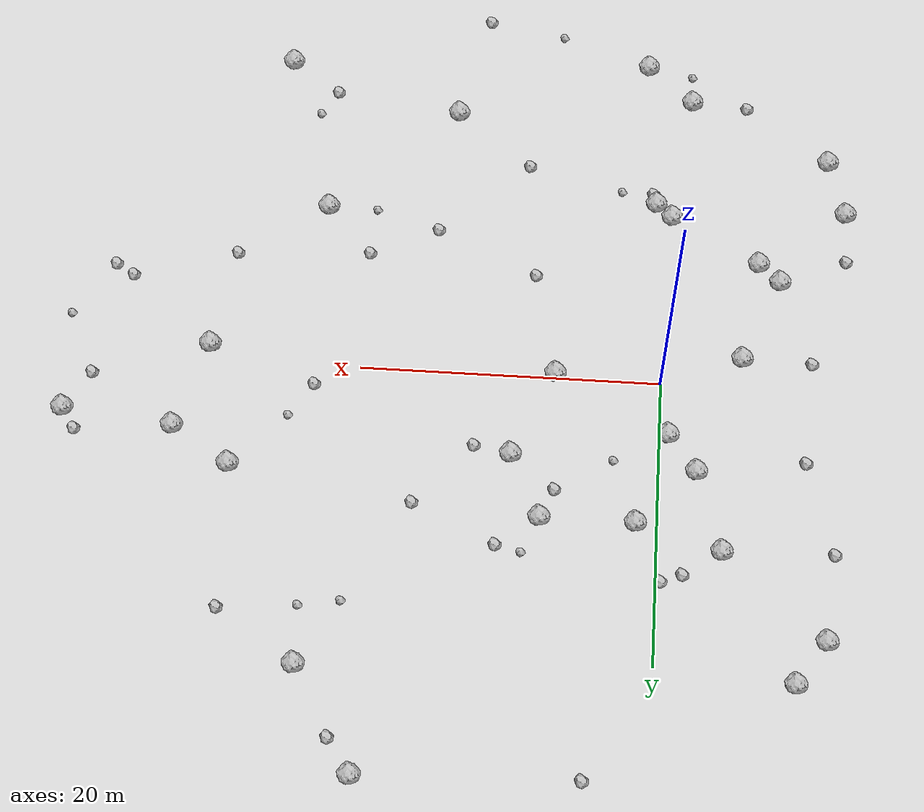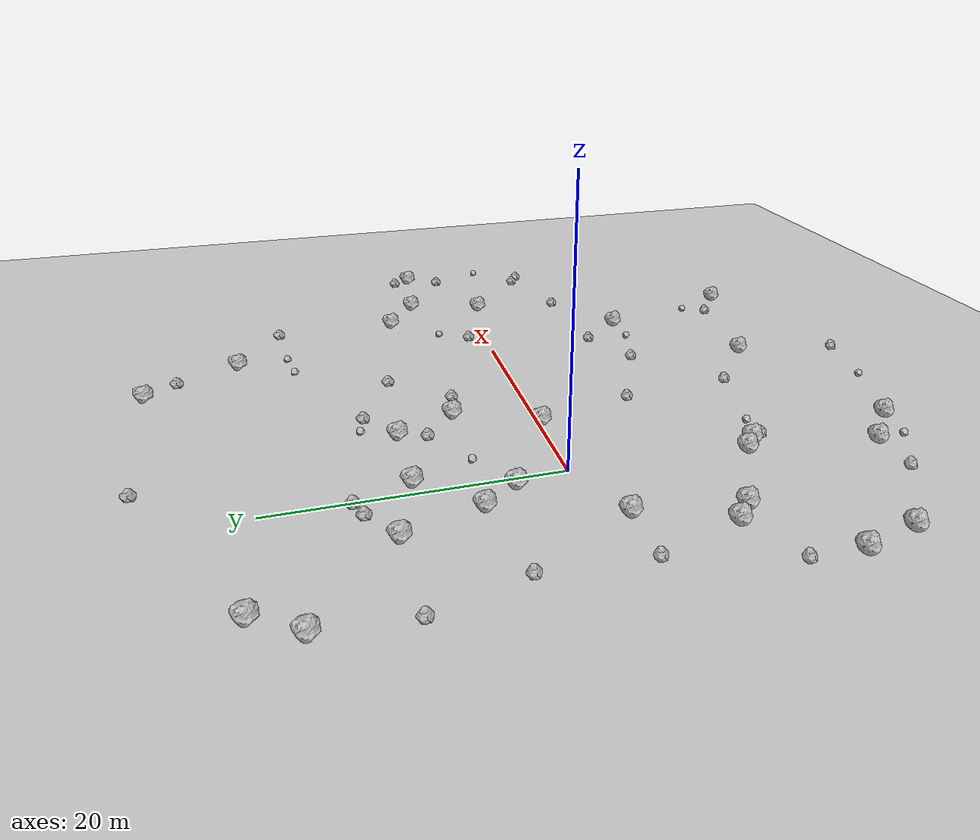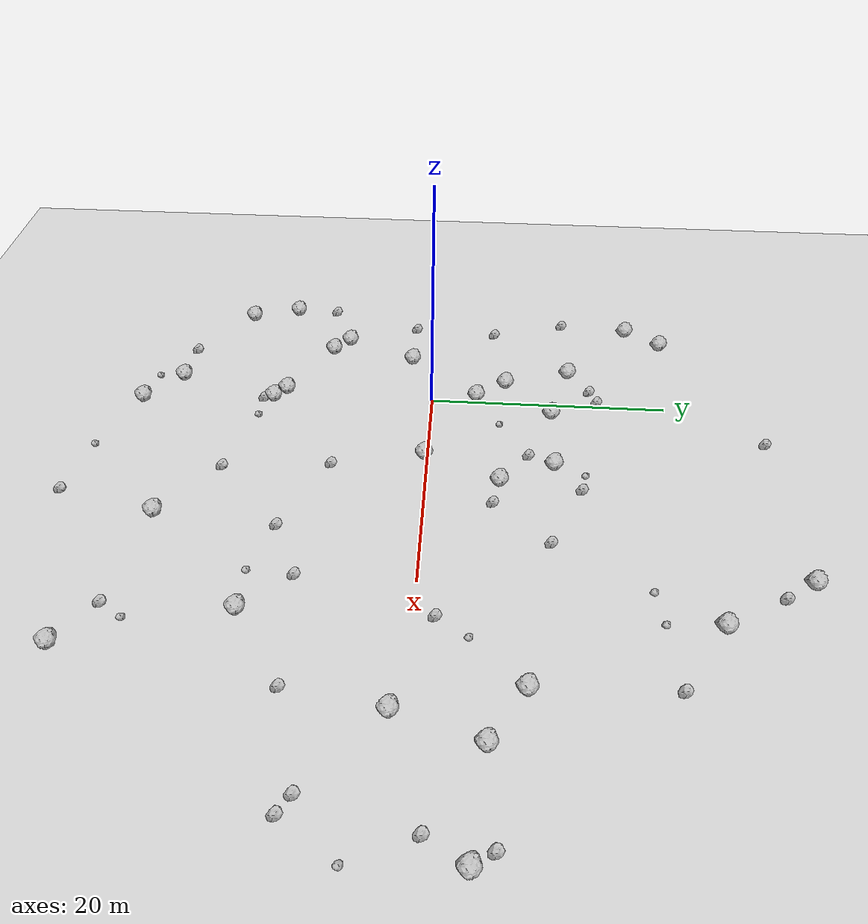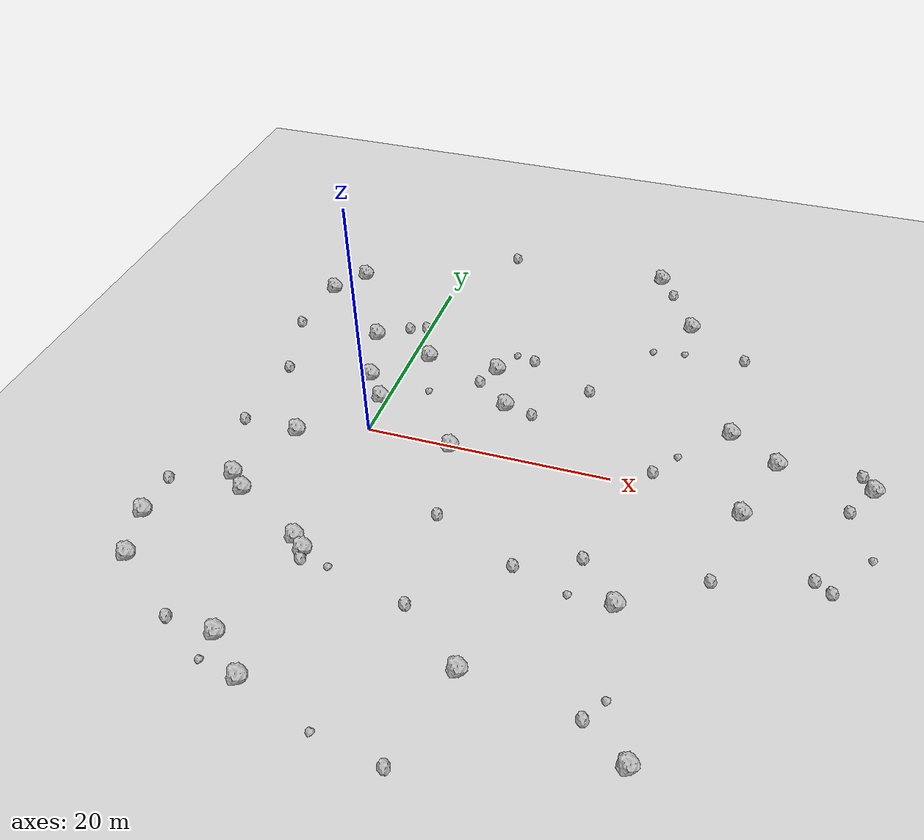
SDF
<sdf version="1.6">
 <world name="default">
  <include><uri>model://custom_ground</uri></include>
  <include><uri>model://sun</uri></include>
  <model name="rock1_0_0">
   <include><uri>model://rock1</uri><pose>-6.443277503195418 -9.487868707565788 0.5 0 0 0</pose></include>
  </model>
  <model name="rock1_0_1">
   <include><uri>model://rock1</uri><pose>22.550187904807615 21.19036130373661 0.5 0 0 0</pose></include>
  </model>
  <model name="rock1_0_2">
   <include><uri>model://rock1</uri><pose>7.0305556059217835 -0.28750387324463844 0.5 0 0 0</pose></include>
  </model>
  <model name="rock1_0_3">
   <include><uri>model://rock1</uri><pose>7.641760754076454 10.216692038546014 0.5 0 0 0</pose></include>
  </model>
  <model name="rock1_0_4">
   <include><uri>model://rock1</uri><pose>30.23309122094161 -1.0826560397617229 0.5 0 0 0</pose></include>
  </model>
  <model name="rock1_0_5">
   <include><uri>model://rock1</uri><pose>-1.7187637144472774 -22.406144028406178 0.5 0 0 0</pose></include>
  </model>
  <model name="rock1_0_6">
   <include><uri>model://rock1</uri><pose>1.4079951477513895 10.235617145945696 0.5 0 0 0</pose></include>
  </model>
  <model name="rock1_0_7">
   <include><uri>model://rock1</uri><pose>-8.902995518602284 20.622236321182733 0.5 0 0 0</pose></include>
  </model>
  <model name="rock1_0_8">
   <include><uri>model://rock1</uri><pose>39.508549570712496 4.245681624743078 0.5 0 0 0</pose></include>
  </model>
  <model name="rock1_0_9">
   <include><uri>model://rock1</uri><pose>-5.3894212409241256 -2.116709362998673 0.5 0 0 0</pose></include>
  </model>
  <model name="rock1_0_10">
   <include><uri>model://rock1</uri><pose>0.6335205582660848 -13.85178328141134 0.5 0 0 0</pose></include>
  </model>
  <model name="rock1_0_11">
   <include><uri>model://rock1</uri><pose>-7.8994113767563405 -8.149558475429263 0.5 0 0 0</pose></include>
  </model>
  <model name="rock1_0_12">
   <include><uri>model://rock1</uri><pose>-4.181651870606091 11.913827634127998 0.5 0 0 0</pose></include>
  </model>
  <model name="rock1_0_13">
   <include><uri>model://rock1</uri><pose>-11.219704810035068 -17.939012809515518 0.5 0 0 0</pose></include>
  </model>
  <model name="rock1_0_14">
   <include><uri>model://rock1</uri><pose>-12.384349242800045 -13.789519842083834 0.5 0 0 0</pose></include>
  </model>
  <model name="rock1_0_15">
   <include><uri>model://rock1</uri><pose>23.21728155504649 -12.295263806051281 0.5 0 0 0</pose></include>
  </model>
  <model name="rock1_0_16">
   <include><uri>model://rock1</uri><pose>1.4245927293472356 -25.220313886482394 0.5 0 0 0</pose></include>
  </model>
  <model name="rock1_0_17">
   <include><uri>model://rock1</uri><pose>28.144983278134205 7.646546889041026 0.5 0 0 0</pose></include>
  </model>
  <model name="rock1_0_18">
   <include><uri>model://rock1</uri><pose>32.11437152186351 5.10086176141121 0.5 0 0 0</pose></include>
  </model>
  <model name="rock1_0_19">
   <include><uri>model://rock1</uri><pose>14.702481053617383 -20.540502805543724 0.5 0 0 0</pose></include>
  </model>
  <model name="rock1_0_20">
   <include><uri>model://rock1</uri><pose>18.458557971878285 28.14566371858286 0.5 0 0 0</pose></include>
  </model>
  <model name="rock1_0_21">
   <include><uri>model://rock1</uri><pose>26.76821164574025 -24.200863007803893 0.5 0 0 0</pose></include>
  </model>
  <model name="rock1_0_22">
   <include><uri>model://rock1</uri><pose>-10.872672660922223 17.65755850956768 0.5 0 0 0</pose></include>
  </model>
  <model name="rock1_0_23">
   <include><uri>model://rock1</uri><pose>9.725443613026663 5.827948389595555 0.5 0 0 0</pose></include>
  </model>
  <model name="rock1_0_24">
   <include><uri>model://rock1</uri><pose>-0.5668998233712621 3.793885789892016 0.5 0 0 0</pose></include>
  </model>
  <model name="rock1_0_25">
   <include><uri>model://rock1</uri><pose>-0.47103784757431555 -12.868228384196051 0.5 0 0 0</pose></include>
  </model>
  <model name="rock1_0_26">
   <include><uri>model://rock1</uri><pose>-2.460116495946018 6.343293231969525 0.5 0 0 0</pose></include>
  </model>
  <model name="rock2_0_0">
   <include><uri>model://rock2</uri><pose>12.850765968298496 -28.47531916898552 0.3 0 0 0</pose></include>
  </model>
  <model name="rock2_0_1">
   <include><uri>model://rock2</uri><pose>36.019471530731906 -6.098207384405498 0.3 0 0 0</pose></include>
  </model>
  <model name="rock2_0_2">
   <include><uri>model://rock2</uri><pose>27.797516410862315 17.69431097387575 0.3 0 0 0</pose></include>
  </model>
  <model name="rock2_0_3">
   <include><uri>model://rock2</uri><pose>29.090618905798145 -8.232707097950318 0.3 0 0 0</pose></include>
  </model>
  <model name="rock2_0_4">
   <include><uri>model://rock2</uri><pose>38.546825873859945 5.725180578138122 0.3 0 0 0</pose></include>
  </model>
  <model name="rock2_0_5">
   <include><uri>model://rock2</uri><pose>-5.555884834743875 -22.12730717349487 0.3 0 0 0</pose></include>
  </model>
  <model name="rock2_0_6">
   <include><uri>model://rock2</uri><pose>20.07562160194979 -8.753678265193251 0.3 0 0 0</pose></include>
  </model>
  <model name="rock2_0_7">
   <include><uri>model://rock2</uri><pose>-0.2885765354832657 14.222355390068074 0.3 0 0 0</pose></include>
  </model>
  <model name="rock2_0_8">
   <include><uri>model://rock2</uri><pose>23.013899254310246 1.4826230786989605 0.3 0 0 0</pose></include>
  </model>
  <model name="rock2_0_9">
   <include><uri>model://rock2</uri><pose>8.660892484651097 -7.688255160640075 0.3 0 0 0</pose></include>
  </model>
  <model name="rock2_0_10">
   <include><uri>model://rock2</uri><pose>20.010362096543105 25.84250545110538 0.3 0 0 0</pose></include>
  </model>
  <model name="rock2_0_11">
   <include><uri>model://rock2</uri><pose>6.742515614180572 8.206277493050955 0.3 0 0 0</pose></include>
  </model>
  <model name="rock2_0_12">
   <include><uri>model://rock2</uri><pose>-12.402292016353588 -10.015560882795626 0.3 0 0 0</pose></include>
  </model>
  <model name="rock2_0_13">
   <include><uri>model://rock2</uri><pose>15.499037753693862 -10.883290655876127 0.3 0 0 0</pose></include>
  </model>
  <model name="rock2_0_14">
   <include><uri>model://rock2</uri><pose>0.8484165443850387 -14.65119680552032 0.3 0 0 0</pose></include>
  </model>
  <model name="rock2_0_15">
   <include><uri>model://rock2</uri><pose>9.478109685024307 -16.402811645770917 0.3 0 0 0</pose></include>
  </model>
  <model name="rock2_0_16">
   <include><uri>model://rock2</uri><pose>15.945537602363324 9.680524663623594 0.3 0 0 0</pose></include>
  </model>
  <model name="rock2_0_17">
   <include><uri>model://rock2</uri><pose>-10.05558108195006 -2.000290715890401 0.3 0 0 0</pose></include>
  </model>
  <model name="rock2_0_18">
   <include><uri>model://rock2</uri><pose>37.871622505409 1.5159388665059659 0.3 0 0 0</pose></include>
  </model>
  <model name="rock2_0_19">
   <include><uri>model://rock2</uri><pose>37.27661108081888 -6.8762030812899795 0.3 0 0 0</pose></include>
  </model>
  <model name="rock2_0_20">
   <include><uri>model://rock2</uri><pose>4.205166372611092 27.681394453289975 0.3 0 0 0</pose></include>
  </model>
  <model name="rock2_0_21">
   <include><uri>model://rock2</uri><pose>23.340825852807967 -21.76499551146255 0.3 0 0 0</pose></include>
  </model>
  <model name="rock2_0_22">
   <include><uri>model://rock2</uri><pose>-9.626479283306393 5.345593081837386 0.3 0 0 0</pose></include>
  </model>
  <model name="rock2_0_23">
   <include><uri>model://rock2</uri><pose>12.149545712732397 5.337969914483672 0.3 0 0 0</pose></include>
  </model>
  <model name="rock2_0_24">
   <include><uri>model://rock2</uri><pose>-1.6834291898651657 13.677952729172326 0.3 0 0 0</pose></include>
  </model>
  <model name="rock2_0_25">
   <include><uri>model://rock2</uri><pose>10.394149280413814 12.31699958827739 0.3 0 0 0</pose></include>
  </model>
  <model name="rock2_0_26">
   <include><uri>model://rock2</uri><pose>-11.444681618949613 11.731973524209991 0.3 0 0 0</pose></include>
  </model>
  <model name="rock3_0_0">
   <include><uri>model://rock3</uri><pose>22.637279911559055 17.171624182176416 0.2 0 0 0</pose></include>
  </model>
  <model name="rock3_0_1">
   <include><uri>model://rock3</uri><pose>24.419964978249794 -19.994066264125824 0.2 0 0 0</pose></include>
  </model>
  <model name="rock3_0_2">
   <include><uri>model://rock3</uri><pose>39.802760895843605 -2.9502760905795284 0.2 0 0 0</pose></include>
  </model>
  <model name="rock3_0_3">
   <include><uri>model://rock3</uri><pose>19.93134404280076 16.71175268600983 0.2 0 0 0</pose></include>
  </model>
  <model name="rock3_0_4">
   <include><uri>model://rock3</uri><pose>8.679637963878765 12.67915462452084 0.2 0 0 0</pose></include>
  </model>
  <model name="rock3_0_5">
   <include><uri>model://rock3</uri><pose>19.822918613462882 -12.301830412854965 0.2 0 0 0</pose></include>
  </model>
  <model name="rock3_0_6">
   <include><uri>model://rock3</uri><pose>-1.7209431648797313 -24.63777488053548 0.2 0 0 0</pose></include>
  </model>
  <model name="rock3_0_7">
   <include><uri>model://rock3</uri><pose>7.523991675669556 -27.53825745464444 0.2 0 0 0</pose></include>
  </model>
  <model name="rock3_0_8">
   <include><uri>model://rock3</uri><pose>2.944192489777869 5.833461908083244 0.2 0 0 0</pose></include>
  </model>
  <model name="rock3_0_9">
   <include><uri>model://rock3</uri><pose>24.520313718330023 3.8161886966223477 0.2 0 0 0</pose></include>
  </model>
  <model name="rock3_0_10">
   <include><uri>model://rock3</uri><pose>2.9753437813506665 -14.791211545339255 0.2 0 0 0</pose></include>
  </model>
 </world>
</sdf>
